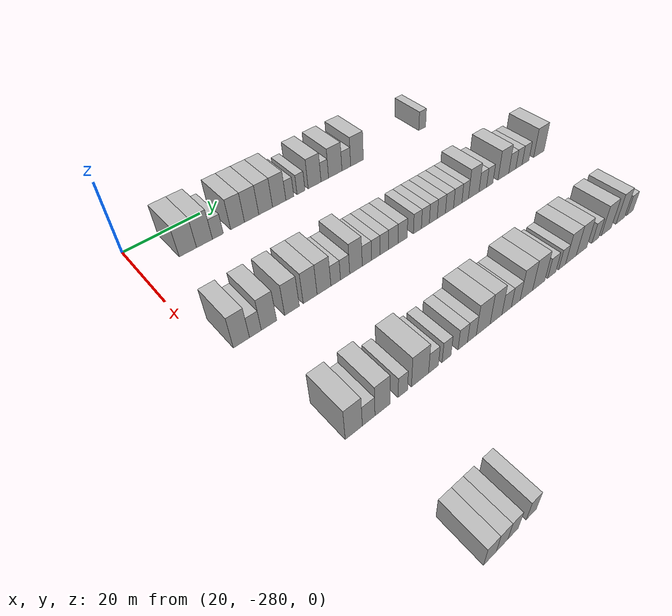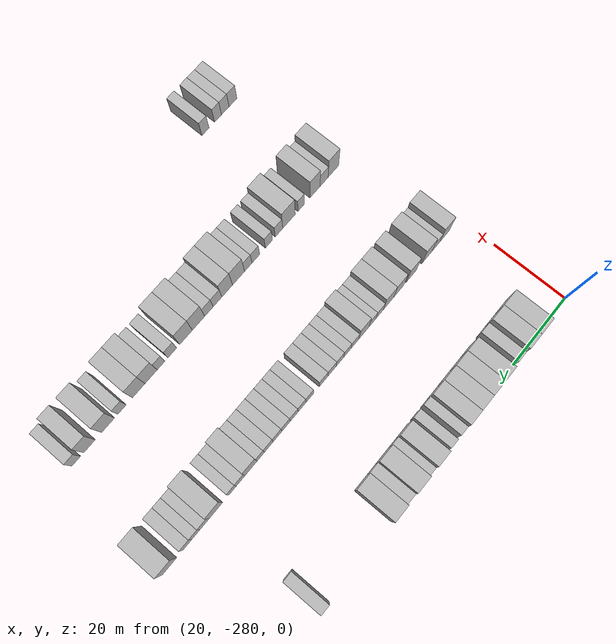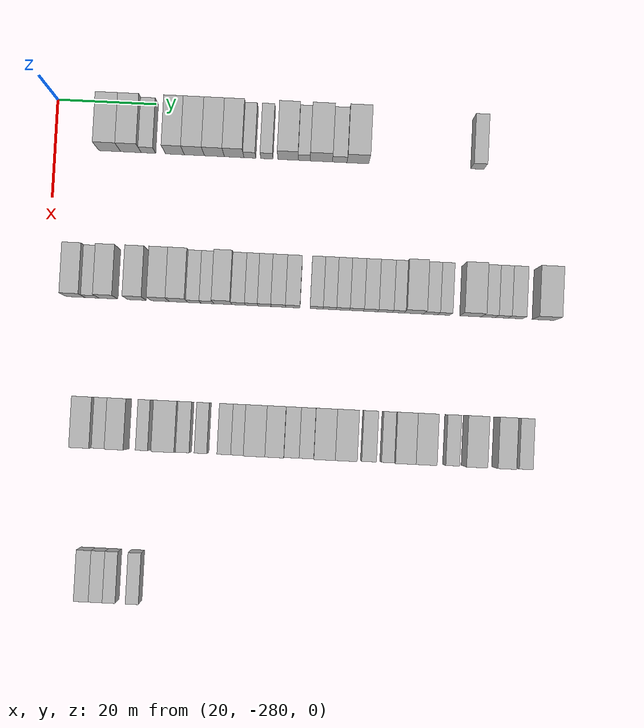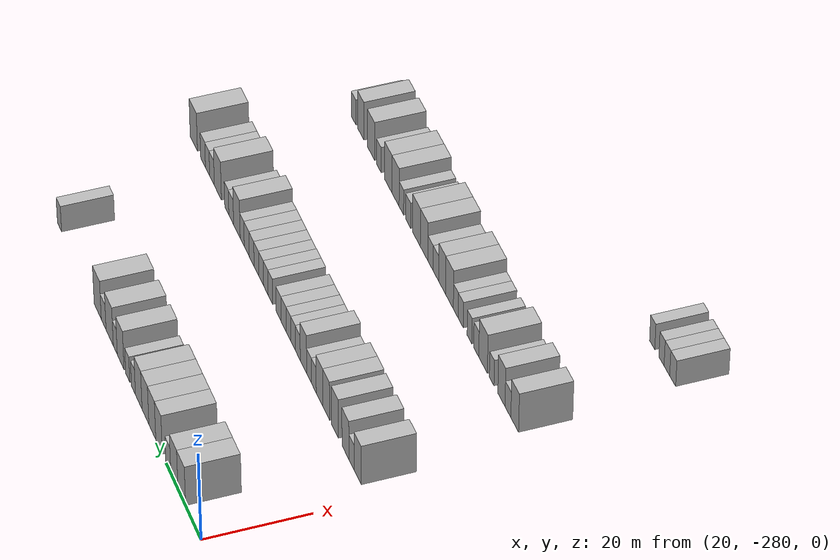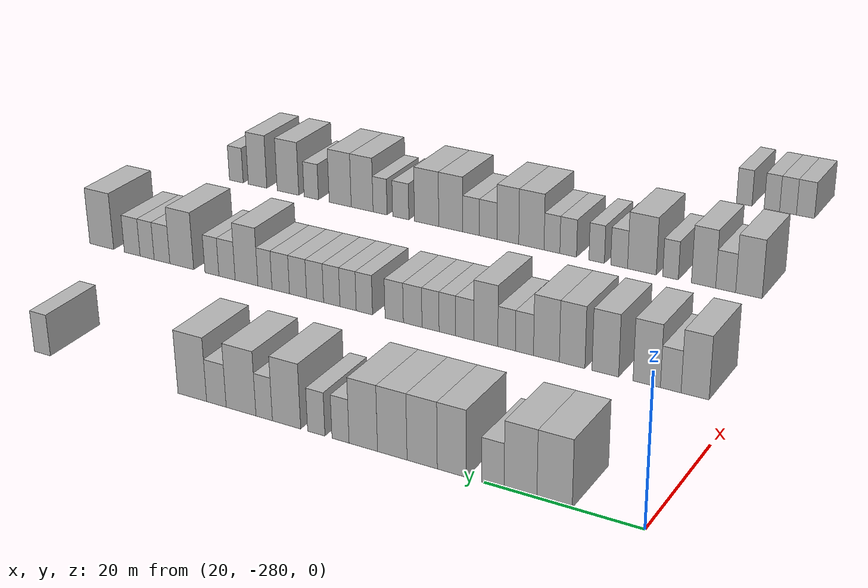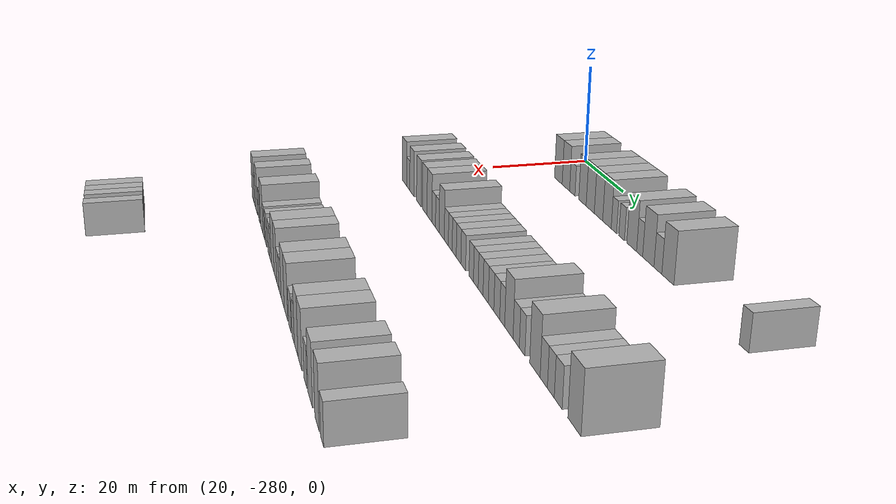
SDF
<sdf version="1.6">
 <world name="default">
  <model name="building_50">
   <static>1</static>
   <pose>25.0000 -268.9126 0 0.000000 0.000000 0.000000</pose>
   <link name="link">
    <pose>0 0 4.50 0 0 0</pose>
    <collision name="collision"><geometry><box><size>10.0000 4.4257 9.0000</size></box></geometry></collision>
    <visual name="visual">
     <cast_shadows>0</cast_shadows>
     <geometry><box><size>10.0000 4.4257 9.0000</size></box></geometry>
     <material>
      <script>
       <uri>model://HANNAS_wall/materials/scripts</uri>
       <uri>model://HANNAS_wall/materials/textures</uri>
       <name>vrc/HANNAS_wall</name>
      </script>
     </material>
    </visual>
   </link>
  </model>
  <model name="building_51">
   <static>1</static>
   <pose>25.0000 -264.6136 0 0.000000 0.000000 0.000000</pose>
   <link name="link">
    <pose>0 0 4.50 0 0 0</pose>
    <collision name="collision"><geometry><box><size>10.0000 4.1723 9.0000</size></box></geometry></collision>
    <visual name="visual">
     <cast_shadows>0</cast_shadows>
     <geometry><box><size>10.0000 4.1723 9.0000</size></box></geometry>
     <material>
      <script>
       <uri>model://HANNAS_wall/materials/scripts</uri>
       <uri>model://HANNAS_wall/materials/textures</uri>
       <name>vrc/HANNAS_wall</name>
      </script>
     </material>
    </visual>
   </link>
  </model>
  <model name="building_52">
   <static>1</static>
   <pose>25.0000 -261.0676 0 0.000000 0.000000 0.000000</pose>
   <link name="link">
    <pose>0 0 3.00 0 0 0</pose>
    <collision name="collision"><geometry><box><size>10.0000 2.9197 6.0000</size></box></geometry></collision>
    <visual name="visual">
     <cast_shadows>0</cast_shadows>
     <geometry><box><size>10.0000 2.9197 6.0000</size></box></geometry>
     <material>
      <script>
       <uri>model://HANNAS_wall/materials/scripts</uri>
       <uri>model://HANNAS_wall/materials/textures</uri>
       <name>vrc/HANNAS_wall</name>
      </script>
     </material>
    </visual>
   </link>
  </model>
  <model name="building_53">
   <static>1</static>
   <pose>25.0000 -255.6854 0 0.000000 0.000000 0.000000</pose>
   <link name="link">
    <pose>0 0 4.50 0 0 0</pose>
    <collision name="collision"><geometry><box><size>10.0000 3.8448 9.0000</size></box></geometry></collision>
    <visual name="visual">
     <cast_shadows>0</cast_shadows>
     <geometry><box><size>10.0000 3.8448 9.0000</size></box></geometry>
     <material>
      <script>
       <uri>model://HANNAS_wall/materials/scripts</uri>
       <uri>model://HANNAS_wall/materials/textures</uri>
       <name>vrc/HANNAS_wall</name>
      </script>
     </material>
    </visual>
   </link>
  </model>
  <model name="building_54">
   <static>1</static>
   <pose>25.0000 -251.7251 0 0.000000 0.000000 0.000000</pose>
   <link name="link">
    <pose>0 0 4.50 0 0 0</pose>
    <collision name="collision"><geometry><box><size>10.0000 4.0758 9.0000</size></box></geometry></collision>
    <visual name="visual">
     <cast_shadows>0</cast_shadows>
     <geometry><box><size>10.0000 4.0758 9.0000</size></box></geometry>
     <material>
      <script>
       <uri>model://HANNAS_wall/materials/scripts</uri>
       <uri>model://HANNAS_wall/materials/textures</uri>
       <name>vrc/HANNAS_wall</name>
      </script>
     </material>
    </visual>
   </link>
  </model>
  <model name="building_55">
   <static>1</static>
   <pose>25.0000 -247.6626 0 0.000000 0.000000 0.000000</pose>
   <link name="link">
    <pose>0 0 4.50 0 0 0</pose>
    <collision name="collision"><geometry><box><size>10.0000 4.0492 9.0000</size></box></geometry></collision>
    <visual name="visual">
     <cast_shadows>0</cast_shadows>
     <geometry><box><size>10.0000 4.0492 9.0000</size></box></geometry>
     <material>
      <script>
       <uri>model://HANNAS_wall/materials/scripts</uri>
       <uri>model://HANNAS_wall/materials/textures</uri>
       <name>vrc/HANNAS_wall</name>
      </script>
     </material>
    </visual>
   </link>
  </model>
  <model name="building_56">
   <static>1</static>
   <pose>25.0000 -243.6527 0 0.000000 0.000000 0.000000</pose>
   <link name="link">
    <pose>0 0 4.50 0 0 0</pose>
    <collision name="collision"><geometry><box><size>10.0000 3.9707 9.0000</size></box></geometry></collision>
    <visual name="visual">
     <cast_shadows>0</cast_shadows>
     <geometry><box><size>10.0000 3.9707 9.0000</size></box></geometry>
     <material>
      <script>
       <uri>model://HANNAS_wall/materials/scripts</uri>
       <uri>model://HANNAS_wall/materials/textures</uri>
       <name>vrc/HANNAS_wall</name>
      </script>
     </material>
    </visual>
   </link>
  </model>
  <model name="building_57">
   <static>1</static>
   <pose>25.0000 -240.4575 0 0.000000 0.000000 0.000000</pose>
   <link name="link">
    <pose>0 0 3.00 0 0 0</pose>
    <collision name="collision"><geometry><box><size>10.0000 2.4198 6.0000</size></box></geometry></collision>
    <visual name="visual">
     <cast_shadows>0</cast_shadows>
     <geometry><box><size>10.0000 2.4198 6.0000</size></box></geometry>
     <material>
      <script>
       <uri>model://HANNAS_wall/materials/scripts</uri>
       <uri>model://HANNAS_wall/materials/textures</uri>
       <name>vrc/HANNAS_wall</name>
      </script>
     </material>
    </visual>
   </link>
  </model>
  <model name="building_58">
   <static>1</static>
   <pose>25.0000 -237.0049 0 0.000000 0.000000 0.000000</pose>
   <link name="link">
    <pose>0 0 3.00 0 0 0</pose>
    <collision name="collision"><geometry><box><size>10.0000 2.4852 6.0000</size></box></geometry></collision>
    <visual name="visual">
     <cast_shadows>0</cast_shadows>
     <geometry><box><size>10.0000 2.4852 6.0000</size></box></geometry>
     <material>
      <script>
       <uri>model://HANNAS_wall/materials/scripts</uri>
       <uri>model://HANNAS_wall/materials/textures</uri>
       <name>vrc/HANNAS_wall</name>
      </script>
     </material>
    </visual>
   </link>
  </model>
  <model name="building_59">
   <static>1</static>
   <pose>25.0000 -232.6993 0 0.000000 0.000000 0.000000</pose>
   <link name="link">
    <pose>0 0 4.50 0 0 0</pose>
    <collision name="collision"><geometry><box><size>10.0000 4.1260 9.0000</size></box></geometry></collision>
    <visual name="visual">
     <cast_shadows>0</cast_shadows>
     <geometry><box><size>10.0000 4.1260 9.0000</size></box></geometry>
     <material>
      <script>
       <uri>model://HANNAS_wall/materials/scripts</uri>
       <uri>model://HANNAS_wall/materials/textures</uri>
       <name>vrc/HANNAS_wall</name>
      </script>
     </material>
    </visual>
   </link>
  </model>
  <model name="building_60">
   <static>1</static>
   <pose>25.0000 -229.4188 0 0.000000 0.000000 0.000000</pose>
   <link name="link">
    <pose>0 0 3.00 0 0 0</pose>
    <collision name="collision"><geometry><box><size>10.0000 2.4350 6.0000</size></box></geometry></collision>
    <visual name="visual">
     <cast_shadows>0</cast_shadows>
     <geometry><box><size>10.0000 2.4350 6.0000</size></box></geometry>
     <material>
      <script>
       <uri>model://HANNAS_wall/materials/scripts</uri>
       <uri>model://HANNAS_wall/materials/textures</uri>
       <name>vrc/HANNAS_wall</name>
      </script>
     </material>
    </visual>
   </link>
  </model>
  <model name="building_61">
   <static>1</static>
   <pose>25.0000 -225.9693 0 0.000000 0.000000 0.000000</pose>
   <link name="link">
    <pose>0 0 4.50 0 0 0</pose>
    <collision name="collision"><geometry><box><size>10.0000 4.4639 9.0000</size></box></geometry></collision>
    <visual name="visual">
     <cast_shadows>0</cast_shadows>
     <geometry><box><size>10.0000 4.4639 9.0000</size></box></geometry>
     <material>
      <script>
       <uri>model://HANNAS_wall/materials/scripts</uri>
       <uri>model://HANNAS_wall/materials/textures</uri>
       <name>vrc/HANNAS_wall</name>
      </script>
     </material>
    </visual>
   </link>
  </model>
  <model name="building_62">
   <static>1</static>
   <pose>25.0000 -222.2496 0 0.000000 0.000000 0.000000</pose>
   <link name="link">
    <pose>0 0 3.00 0 0 0</pose>
    <collision name="collision"><geometry><box><size>10.0000 2.9757 6.0000</size></box></geometry></collision>
    <visual name="visual">
     <cast_shadows>0</cast_shadows>
     <geometry><box><size>10.0000 2.9757 6.0000</size></box></geometry>
     <material>
      <script>
       <uri>model://HANNAS_wall/materials/scripts</uri>
       <uri>model://HANNAS_wall/materials/textures</uri>
       <name>vrc/HANNAS_wall</name>
      </script>
     </material>
    </visual>
   </link>
  </model>
  <model name="building_63">
   <static>1</static>
   <pose>25.0000 -218.5506 0 0.000000 0.000000 0.000000</pose>
   <link name="link">
    <pose>0 0 4.50 0 0 0</pose>
    <collision name="collision"><geometry><box><size>10.0000 4.4222 9.0000</size></box></geometry></collision>
    <visual name="visual">
     <cast_shadows>0</cast_shadows>
     <geometry><box><size>10.0000 4.4222 9.0000</size></box></geometry>
     <material>
      <script>
       <uri>model://HANNAS_wall/materials/scripts</uri>
       <uri>model://HANNAS_wall/materials/textures</uri>
       <name>vrc/HANNAS_wall</name>
      </script>
     </material>
    </visual>
   </link>
  </model>
  <model name="building_64">
   <static>1</static>
   <pose>25.0000 -194.2822 0 0.000000 0.000000 0.000000</pose>
   <link name="link">
    <pose>0 0 3.00 0 0 0</pose>
    <collision name="collision"><geometry><box><size>10.0000 2.7049 6.0000</size></box></geometry></collision>
    <visual name="visual">
     <cast_shadows>0</cast_shadows>
     <geometry><box><size>10.0000 2.7049 6.0000</size></box></geometry>
     <material>
      <script>
       <uri>model://HANNAS_wall/materials/scripts</uri>
       <uri>model://HANNAS_wall/materials/textures</uri>
       <name>vrc/HANNAS_wall</name>
      </script>
     </material>
    </visual>
   </link>
  </model>
  <model name="building_264">
   <static>1</static>
   <pose>55.0000 -274.0700 0 0.000000 0.000000 0.000000</pose>
   <link name="link">
    <pose>0 0 4.50 0 0 0</pose>
    <collision name="collision"><geometry><box><size>10.0000 3.7678 9.0000</size></box></geometry></collision>
    <visual name="visual">
     <cast_shadows>0</cast_shadows>
     <geometry><box><size>10.0000 3.7678 9.0000</size></box></geometry>
     <material>
      <script>
       <uri>model://HANNAS_wall/materials/scripts</uri>
       <uri>model://HANNAS_wall/materials/textures</uri>
       <name>vrc/HANNAS_wall</name>
      </script>
     </material>
    </visual>
   </link>
  </model>
  <model name="building_265">
   <static>1</static>
   <pose>55.0000 -270.7820 0 0.000000 0.000000 0.000000</pose>
   <link name="link">
    <pose>0 0 3.00 0 0 0</pose>
    <collision name="collision"><geometry><box><size>10.0000 2.8082 6.0000</size></box></geometry></collision>
    <visual name="visual">
     <cast_shadows>0</cast_shadows>
     <geometry><box><size>10.0000 2.8082 6.0000</size></box></geometry>
     <material>
      <script>
       <uri>model://HANNAS_wall/materials/scripts</uri>
       <uri>model://HANNAS_wall/materials/textures</uri>
       <name>vrc/HANNAS_wall</name>
      </script>
     </material>
    </visual>
   </link>
  </model>
  <model name="building_266">
   <static>1</static>
   <pose>55.0000 -267.4968 0 0.000000 0.000000 0.000000</pose>
   <link name="link">
    <pose>0 0 4.50 0 0 0</pose>
    <collision name="collision"><geometry><box><size>10.0000 3.7623 9.0000</size></box></geometry></collision>
    <visual name="visual">
     <cast_shadows>0</cast_shadows>
     <geometry><box><size>10.0000 3.7623 9.0000</size></box></geometry>
     <material>
      <script>
       <uri>model://HANNAS_wall/materials/scripts</uri>
       <uri>model://HANNAS_wall/materials/textures</uri>
       <name>vrc/HANNAS_wall</name>
      </script>
     </material>
    </visual>
   </link>
  </model>
  <model name="building_267">
   <static>1</static>
   <pose>55.0000 -261.7389 0 0.000000 0.000000 0.000000</pose>
   <link name="link">
    <pose>0 0 4.50 0 0 0</pose>
    <collision name="collision"><geometry><box><size>10.0000 3.7535 9.0000</size></box></geometry></collision>
    <visual name="visual">
     <cast_shadows>0</cast_shadows>
     <geometry><box><size>10.0000 3.7535 9.0000</size></box></geometry>
     <material>
      <script>
       <uri>model://HANNAS_wall/materials/scripts</uri>
       <uri>model://HANNAS_wall/materials/textures</uri>
       <name>vrc/HANNAS_wall</name>
      </script>
     </material>
    </visual>
   </link>
  </model>
  <model name="building_268">
   <static>1</static>
   <pose>55.0000 -257.0282 0 0.000000 0.000000 0.000000</pose>
   <link name="link">
    <pose>0 0 4.50 0 0 0</pose>
    <collision name="collision"><geometry><box><size>10.0000 3.6679 9.0000</size></box></geometry></collision>
    <visual name="visual">
     <cast_shadows>0</cast_shadows>
     <geometry><box><size>10.0000 3.6679 9.0000</size></box></geometry>
     <material>
      <script>
       <uri>model://HANNAS_wall/materials/scripts</uri>
       <uri>model://HANNAS_wall/materials/textures</uri>
       <name>vrc/HANNAS_wall</name>
      </script>
     </material>
    </visual>
   </link>
  </model>
  <model name="building_269">
   <static>1</static>
   <pose>55.0000 -253.3184 0 0.000000 0.000000 0.000000</pose>
   <link name="link">
    <pose>0 0 4.50 0 0 0</pose>
    <collision name="collision"><geometry><box><size>10.0000 3.7517 9.0000</size></box></geometry></collision>
    <visual name="visual">
     <cast_shadows>0</cast_shadows>
     <geometry><box><size>10.0000 3.7517 9.0000</size></box></geometry>
     <material>
      <script>
       <uri>model://HANNAS_wall/materials/scripts</uri>
       <uri>model://HANNAS_wall/materials/textures</uri>
       <name>vrc/HANNAS_wall</name>
      </script>
     </material>
    </visual>
   </link>
  </model>
  <model name="building_270">
   <static>1</static>
   <pose>55.0000 -250.1114 0 0.000000 0.000000 0.000000</pose>
   <link name="link">
    <pose>0 0 3.00 0 0 0</pose>
    <collision name="collision"><geometry><box><size>10.0000 2.6622 6.0000</size></box></geometry></collision>
    <visual name="visual">
     <cast_shadows>0</cast_shadows>
     <geometry><box><size>10.0000 2.6622 6.0000</size></box></geometry>
     <material>
      <script>
       <uri>model://HANNAS_wall/materials/scripts</uri>
       <uri>model://HANNAS_wall/materials/textures</uri>
       <name>vrc/HANNAS_wall</name>
      </script>
     </material>
    </visual>
   </link>
  </model>
  <model name="building_271">
   <static>1</static>
   <pose>55.0000 -247.4795 0 0.000000 0.000000 0.000000</pose>
   <link name="link">
    <pose>0 0 3.00 0 0 0</pose>
    <collision name="collision"><geometry><box><size>10.0000 2.6016 6.0000</size></box></geometry></collision>
    <visual name="visual">
     <cast_shadows>0</cast_shadows>
     <geometry><box><size>10.0000 2.6016 6.0000</size></box></geometry>
     <material>
      <script>
       <uri>model://HANNAS_wall/materials/scripts</uri>
       <uri>model://HANNAS_wall/materials/textures</uri>
       <name>vrc/HANNAS_wall</name>
      </script>
     </material>
    </visual>
   </link>
  </model>
  <model name="building_272">
   <static>1</static>
   <pose>55.0000 -244.3650 0 0.000000 0.000000 0.000000</pose>
   <link name="link">
    <pose>0 0 4.50 0 0 0</pose>
    <collision name="collision"><geometry><box><size>10.0000 3.6274 9.0000</size></box></geometry></collision>
    <visual name="visual">
     <cast_shadows>0</cast_shadows>
     <geometry><box><size>10.0000 3.6274 9.0000</size></box></geometry>
     <material>
      <script>
       <uri>model://HANNAS_wall/materials/scripts</uri>
       <uri>model://HANNAS_wall/materials/textures</uri>
       <name>vrc/HANNAS_wall</name>
      </script>
     </material>
    </visual>
   </link>
  </model>
  <model name="building_273">
   <static>1</static>
   <pose>55.0000 -241.1746 0 0.000000 0.000000 0.000000</pose>
   <link name="link">
    <pose>0 0 3.00 0 0 0</pose>
    <collision name="collision"><geometry><box><size>10.0000 2.7535 6.0000</size></box></geometry></collision>
    <visual name="visual">
     <cast_shadows>0</cast_shadows>
     <geometry><box><size>10.0000 2.7535 6.0000</size></box></geometry>
     <material>
      <script>
       <uri>model://HANNAS_wall/materials/scripts</uri>
       <uri>model://HANNAS_wall/materials/textures</uri>
       <name>vrc/HANNAS_wall</name>
      </script>
     </material>
    </visual>
   </link>
  </model>
  <model name="building_274">
   <static>1</static>
   <pose>55.0000 -238.5327 0 0.000000 0.000000 0.000000</pose>
   <link name="link">
    <pose>0 0 3.00 0 0 0</pose>
    <collision name="collision"><geometry><box><size>10.0000 2.5304 6.0000</size></box></geometry></collision>
    <visual name="visual">
     <cast_shadows>0</cast_shadows>
     <geometry><box><size>10.0000 2.5304 6.0000</size></box></geometry>
     <material>
      <script>
       <uri>model://HANNAS_wall/materials/scripts</uri>
       <uri>model://HANNAS_wall/materials/textures</uri>
       <name>vrc/HANNAS_wall</name>
      </script>
     </material>
    </visual>
   </link>
  </model>
  <model name="building_275">
   <static>1</static>
   <pose>55.0000 -235.9418 0 0.000000 0.000000 0.000000</pose>
   <link name="link">
    <pose>0 0 3.00 0 0 0</pose>
    <collision name="collision"><geometry><box><size>10.0000 2.6516 6.0000</size></box></geometry></collision>
    <visual name="visual">
     <cast_shadows>0</cast_shadows>
     <geometry><box><size>10.0000 2.6516 6.0000</size></box></geometry>
     <material>
      <script>
       <uri>model://HANNAS_wall/materials/scripts</uri>
       <uri>model://HANNAS_wall/materials/textures</uri>
       <name>vrc/HANNAS_wall</name>
      </script>
     </material>
    </visual>
   </link>
  </model>
  <model name="building_276">
   <static>1</static>
   <pose>55.0000 -233.1583 0 0.000000 0.000000 0.000000</pose>
   <link name="link">
    <pose>0 0 3.00 0 0 0</pose>
    <collision name="collision"><geometry><box><size>10.0000 2.9152 6.0000</size></box></geometry></collision>
    <visual name="visual">
     <cast_shadows>0</cast_shadows>
     <geometry><box><size>10.0000 2.9152 6.0000</size></box></geometry>
     <material>
      <script>
       <uri>model://HANNAS_wall/materials/scripts</uri>
       <uri>model://HANNAS_wall/materials/textures</uri>
       <name>vrc/HANNAS_wall</name>
      </script>
     </material>
    </visual>
   </link>
  </model>
  <model name="building_277">
   <static>1</static>
   <pose>55.0000 -230.2488 0 0.000000 0.000000 0.000000</pose>
   <link name="link">
    <pose>0 0 3.00 0 0 0</pose>
    <collision name="collision"><geometry><box><size>10.0000 2.9038 6.0000</size></box></geometry></collision>
    <visual name="visual">
     <cast_shadows>0</cast_shadows>
     <geometry><box><size>10.0000 2.9038 6.0000</size></box></geometry>
     <material>
      <script>
       <uri>model://HANNAS_wall/materials/scripts</uri>
       <uri>model://HANNAS_wall/materials/textures</uri>
       <name>vrc/HANNAS_wall</name>
      </script>
     </material>
    </visual>
   </link>
  </model>
  <model name="building_278">
   <static>1</static>
   <pose>55.0000 -225.4875 0 0.000000 0.000000 0.000000</pose>
   <link name="link">
    <pose>0 0 3.00 0 0 0</pose>
    <collision name="collision"><geometry><box><size>10.0000 2.6188 6.0000</size></box></geometry></collision>
    <visual name="visual">
     <cast_shadows>0</cast_shadows>
     <geometry><box><size>10.0000 2.6188 6.0000</size></box></geometry>
     <material>
      <script>
       <uri>model://HANNAS_wall/materials/scripts</uri>
       <uri>model://HANNAS_wall/materials/textures</uri>
       <name>vrc/HANNAS_wall</name>
      </script>
     </material>
    </visual>
   </link>
  </model>
  <model name="building_279">
   <static>1</static>
   <pose>55.0000 -222.8541 0 0.000000 0.000000 0.000000</pose>
   <link name="link">
    <pose>0 0 3.00 0 0 0</pose>
    <collision name="collision"><geometry><box><size>10.0000 2.6481 6.0000</size></box></geometry></collision>
    <visual name="visual">
     <cast_shadows>0</cast_shadows>
     <geometry><box><size>10.0000 2.6481 6.0000</size></box></geometry>
     <material>
      <script>
       <uri>model://HANNAS_wall/materials/scripts</uri>
       <uri>model://HANNAS_wall/materials/textures</uri>
       <name>vrc/HANNAS_wall</name>
      </script>
     </material>
    </visual>
   </link>
  </model>
  <model name="building_280">
   <static>1</static>
   <pose>55.0000 -220.1890 0 0.000000 0.000000 0.000000</pose>
   <link name="link">
    <pose>0 0 3.00 0 0 0</pose>
    <collision name="collision"><geometry><box><size>10.0000 2.6820 6.0000</size></box></geometry></collision>
    <visual name="visual">
     <cast_shadows>0</cast_shadows>
     <geometry><box><size>10.0000 2.6820 6.0000</size></box></geometry>
     <material>
      <script>
       <uri>model://HANNAS_wall/materials/scripts</uri>
       <uri>model://HANNAS_wall/materials/textures</uri>
       <name>vrc/HANNAS_wall</name>
      </script>
     </material>
    </visual>
   </link>
  </model>
  <model name="building_281">
   <static>1</static>
   <pose>55.0000 -217.4396 0 0.000000 0.000000 0.000000</pose>
   <link name="link">
    <pose>0 0 3.00 0 0 0</pose>
    <collision name="collision"><geometry><box><size>10.0000 2.8168 6.0000</size></box></geometry></collision>
    <visual name="visual">
     <cast_shadows>0</cast_shadows>
     <geometry><box><size>10.0000 2.8168 6.0000</size></box></geometry>
     <material>
      <script>
       <uri>model://HANNAS_wall/materials/scripts</uri>
       <uri>model://HANNAS_wall/materials/textures</uri>
       <name>vrc/HANNAS_wall</name>
      </script>
     </material>
    </visual>
   </link>
  </model>
  <model name="building_282">
   <static>1</static>
   <pose>55.0000 -214.5979 0 0.000000 0.000000 0.000000</pose>
   <link name="link">
    <pose>0 0 3.00 0 0 0</pose>
    <collision name="collision"><geometry><box><size>10.0000 2.8666 6.0000</size></box></geometry></collision>
    <visual name="visual">
     <cast_shadows>0</cast_shadows>
     <geometry><box><size>10.0000 2.8666 6.0000</size></box></geometry>
     <material>
      <script>
       <uri>model://HANNAS_wall/materials/scripts</uri>
       <uri>model://HANNAS_wall/materials/textures</uri>
       <name>vrc/HANNAS_wall</name>
      </script>
     </material>
    </visual>
   </link>
  </model>
  <model name="building_283">
   <static>1</static>
   <pose>55.0000 -211.6831 0 0.000000 0.000000 0.000000</pose>
   <link name="link">
    <pose>0 0 3.00 0 0 0</pose>
    <collision name="collision"><geometry><box><size>10.0000 2.9630 6.0000</size></box></geometry></collision>
    <visual name="visual">
     <cast_shadows>0</cast_shadows>
     <geometry><box><size>10.0000 2.9630 6.0000</size></box></geometry>
     <material>
      <script>
       <uri>model://HANNAS_wall/materials/scripts</uri>
       <uri>model://HANNAS_wall/materials/textures</uri>
       <name>vrc/HANNAS_wall</name>
      </script>
     </material>
    </visual>
   </link>
  </model>
  <model name="building_284">
   <static>1</static>
   <pose>55.0000 -208.9983 0 0.000000 0.000000 0.000000</pose>
   <link name="link">
    <pose>0 0 3.00 0 0 0</pose>
    <collision name="collision"><geometry><box><size>10.0000 2.4067 6.0000</size></box></geometry></collision>
    <visual name="visual">
     <cast_shadows>0</cast_shadows>
     <geometry><box><size>10.0000 2.4067 6.0000</size></box></geometry>
     <material>
      <script>
       <uri>model://HANNAS_wall/materials/scripts</uri>
       <uri>model://HANNAS_wall/materials/textures</uri>
       <name>vrc/HANNAS_wall</name>
      </script>
     </material>
    </visual>
   </link>
  </model>
  <model name="building_285">
   <static>1</static>
   <pose>55.0000 -205.8319 0 0.000000 0.000000 0.000000</pose>
   <link name="link">
    <pose>0 0 4.50 0 0 0</pose>
    <collision name="collision"><geometry><box><size>10.0000 3.9261 9.0000</size></box></geometry></collision>
    <visual name="visual">
     <cast_shadows>0</cast_shadows>
     <geometry><box><size>10.0000 3.9261 9.0000</size></box></geometry>
     <material>
      <script>
       <uri>model://HANNAS_wall/materials/scripts</uri>
       <uri>model://HANNAS_wall/materials/textures</uri>
       <name>vrc/HANNAS_wall</name>
      </script>
     </material>
    </visual>
   </link>
  </model>
  <model name="building_286">
   <static>1</static>
   <pose>55.0000 -202.4458 0 0.000000 0.000000 0.000000</pose>
   <link name="link">
    <pose>0 0 3.00 0 0 0</pose>
    <collision name="collision"><geometry><box><size>10.0000 2.8460 6.0000</size></box></geometry></collision>
    <visual name="visual">
     <cast_shadows>0</cast_shadows>
     <geometry><box><size>10.0000 2.8460 6.0000</size></box></geometry>
     <material>
      <script>
       <uri>model://HANNAS_wall/materials/scripts</uri>
       <uri>model://HANNAS_wall/materials/textures</uri>
       <name>vrc/HANNAS_wall</name>
      </script>
     </material>
    </visual>
   </link>
  </model>
  <model name="building_287">
   <static>1</static>
   <pose>55.0000 -199.7913 0 0.000000 0.000000 0.000000</pose>
   <link name="link">
    <pose>0 0 3.00 0 0 0</pose>
    <collision name="collision"><geometry><box><size>10.0000 2.4629 6.0000</size></box></geometry></collision>
    <visual name="visual">
     <cast_shadows>0</cast_shadows>
     <geometry><box><size>10.0000 2.4629 6.0000</size></box></geometry>
     <material>
      <script>
       <uri>model://HANNAS_wall/materials/scripts</uri>
       <uri>model://HANNAS_wall/materials/textures</uri>
       <name>vrc/HANNAS_wall</name>
      </script>
     </material>
    </visual>
   </link>
  </model>
  <model name="building_288">
   <static>1</static>
   <pose>55.0000 -194.4192 0 0.000000 0.000000 0.000000</pose>
   <link name="link">
    <pose>0 0 4.50 0 0 0</pose>
    <collision name="collision"><geometry><box><size>10.0000 4.2814 9.0000</size></box></geometry></collision>
    <visual name="visual">
     <cast_shadows>0</cast_shadows>
     <geometry><box><size>10.0000 4.2814 9.0000</size></box></geometry>
     <material>
      <script>
       <uri>model://HANNAS_wall/materials/scripts</uri>
       <uri>model://HANNAS_wall/materials/textures</uri>
       <name>vrc/HANNAS_wall</name>
      </script>
     </material>
    </visual>
   </link>
  </model>
  <model name="building_289">
   <static>1</static>
   <pose>55.0000 -190.8534 0 0.000000 0.000000 0.000000</pose>
   <link name="link">
    <pose>0 0 3.00 0 0 0</pose>
    <collision name="collision"><geometry><box><size>10.0000 2.8503 6.0000</size></box></geometry></collision>
    <visual name="visual">
     <cast_shadows>0</cast_shadows>
     <geometry><box><size>10.0000 2.8503 6.0000</size></box></geometry>
     <material>
      <script>
       <uri>model://HANNAS_wall/materials/scripts</uri>
       <uri>model://HANNAS_wall/materials/textures</uri>
       <name>vrc/HANNAS_wall</name>
      </script>
     </material>
    </visual>
   </link>
  </model>
  <model name="building_290">
   <static>1</static>
   <pose>55.0000 -188.1364 0 0.000000 0.000000 0.000000</pose>
   <link name="link">
    <pose>0 0 3.00 0 0 0</pose>
    <collision name="collision"><geometry><box><size>10.0000 2.5836 6.0000</size></box></geometry></collision>
    <visual name="visual">
     <cast_shadows>0</cast_shadows>
     <geometry><box><size>10.0000 2.5836 6.0000</size></box></geometry>
     <material>
      <script>
       <uri>model://HANNAS_wall/materials/scripts</uri>
       <uri>model://HANNAS_wall/materials/textures</uri>
       <name>vrc/HANNAS_wall</name>
      </script>
     </material>
    </visual>
   </link>
  </model>
  <model name="building_291">
   <static>1</static>
   <pose>55.0000 -185.3908 0 0.000000 0.000000 0.000000</pose>
   <link name="link">
    <pose>0 0 3.00 0 0 0</pose>
    <collision name="collision"><geometry><box><size>10.0000 2.9077 6.0000</size></box></geometry></collision>
    <visual name="visual">
     <cast_shadows>0</cast_shadows>
     <geometry><box><size>10.0000 2.9077 6.0000</size></box></geometry>
     <material>
      <script>
       <uri>model://HANNAS_wall/materials/scripts</uri>
       <uri>model://HANNAS_wall/materials/textures</uri>
       <name>vrc/HANNAS_wall</name>
      </script>
     </material>
    </visual>
   </link>
  </model>
  <model name="building_292">
   <static>1</static>
   <pose>55.0000 -179.6924 0 0.000000 0.000000 0.000000</pose>
   <link name="link">
    <pose>0 0 4.50 0 0 0</pose>
    <collision name="collision"><geometry><box><size>10.0000 4.4892 9.0000</size></box></geometry></collision>
    <visual name="visual">
     <cast_shadows>0</cast_shadows>
     <geometry><box><size>10.0000 4.4892 9.0000</size></box></geometry>
     <material>
      <script>
       <uri>model://HANNAS_wall/materials/scripts</uri>
       <uri>model://HANNAS_wall/materials/textures</uri>
       <name>vrc/HANNAS_wall</name>
      </script>
     </material>
    </visual>
   </link>
  </model>
  <model name="building_502">
   <static>1</static>
   <pose>85.0000 -270.3484 0 0.000000 0.000000 0.000000</pose>
   <link name="link">
    <pose>0 0 4.50 0 0 0</pose>
    <collision name="collision"><geometry><box><size>10.0000 3.9264 9.0000</size></box></geometry></collision>
    <visual name="visual">
     <cast_shadows>0</cast_shadows>
     <geometry><box><size>10.0000 3.9264 9.0000</size></box></geometry>
     <material>
      <script>
       <uri>model://HANNAS_wall/materials/scripts</uri>
       <uri>model://HANNAS_wall/materials/textures</uri>
       <name>vrc/HANNAS_wall</name>
      </script>
     </material>
    </visual>
   </link>
  </model>
  <model name="building_503">
   <static>1</static>
   <pose>85.0000 -266.8934 0 0.000000 0.000000 0.000000</pose>
   <link name="link">
    <pose>0 0 3.00 0 0 0</pose>
    <collision name="collision"><geometry><box><size>10.0000 2.9835 6.0000</size></box></geometry></collision>
    <visual name="visual">
     <cast_shadows>0</cast_shadows>
     <geometry><box><size>10.0000 2.9835 6.0000</size></box></geometry>
     <material>
      <script>
       <uri>model://HANNAS_wall/materials/scripts</uri>
       <uri>model://HANNAS_wall/materials/textures</uri>
       <name>vrc/HANNAS_wall</name>
      </script>
     </material>
    </visual>
   </link>
  </model>
  <model name="building_504">
   <static>1</static>
   <pose>85.0000 -263.5640 0 0.000000 0.000000 0.000000</pose>
   <link name="link">
    <pose>0 0 4.50 0 0 0</pose>
    <collision name="collision"><geometry><box><size>10.0000 3.6753 9.0000</size></box></geometry></collision>
    <visual name="visual">
     <cast_shadows>0</cast_shadows>
     <geometry><box><size>10.0000 3.6753 9.0000</size></box></geometry>
     <material>
      <script>
       <uri>model://HANNAS_wall/materials/scripts</uri>
       <uri>model://HANNAS_wall/materials/textures</uri>
       <name>vrc/HANNAS_wall</name>
      </script>
     </material>
    </visual>
   </link>
  </model>
  <model name="building_505">
   <static>1</static>
   <pose>85.0000 -258.5262 0 0.000000 0.000000 0.000000</pose>
   <link name="link">
    <pose>0 0 3.00 0 0 0</pose>
    <collision name="collision"><geometry><box><size>10.0000 2.4002 6.0000</size></box></geometry></collision>
    <visual name="visual">
     <cast_shadows>0</cast_shadows>
     <geometry><box><size>10.0000 2.4002 6.0000</size></box></geometry>
     <material>
      <script>
       <uri>model://HANNAS_wall/materials/scripts</uri>
       <uri>model://HANNAS_wall/materials/textures</uri>
       <name>vrc/HANNAS_wall</name>
      </script>
     </material>
    </visual>
   </link>
  </model>
  <model name="building_506">
   <static>1</static>
   <pose>85.0000 -254.0789 0 0.000000 0.000000 0.000000</pose>
   <link name="link">
    <pose>0 0 4.50 0 0 0</pose>
    <collision name="collision"><geometry><box><size>10.0000 4.4945 9.0000</size></box></geometry></collision>
    <visual name="visual">
     <cast_shadows>0</cast_shadows>
     <geometry><box><size>10.0000 4.4945 9.0000</size></box></geometry>
     <material>
      <script>
       <uri>model://HANNAS_wall/materials/scripts</uri>
       <uri>model://HANNAS_wall/materials/textures</uri>
       <name>vrc/HANNAS_wall</name>
      </script>
     </material>
    </visual>
   </link>
  </model>
  <model name="building_507">
   <static>1</static>
   <pose>85.0000 -250.4963 0 0.000000 0.000000 0.000000</pose>
   <link name="link">
    <pose>0 0 3.00 0 0 0</pose>
    <collision name="collision"><geometry><box><size>10.0000 2.6707 6.0000</size></box></geometry></collision>
    <visual name="visual">
     <cast_shadows>0</cast_shadows>
     <geometry><box><size>10.0000 2.6707 6.0000</size></box></geometry>
     <material>
      <script>
       <uri>model://HANNAS_wall/materials/scripts</uri>
       <uri>model://HANNAS_wall/materials/textures</uri>
       <name>vrc/HANNAS_wall</name>
      </script>
     </material>
    </visual>
   </link>
  </model>
  <model name="building_508">
   <static>1</static>
   <pose>85.0000 -246.9183 0 0.000000 0.000000 0.000000</pose>
   <link name="link">
    <pose>0 0 3.00 0 0 0</pose>
    <collision name="collision"><geometry><box><size>10.0000 2.4853 6.0000</size></box></geometry></collision>
    <visual name="visual">
     <cast_shadows>0</cast_shadows>
     <geometry><box><size>10.0000 2.4853 6.0000</size></box></geometry>
     <material>
      <script>
       <uri>model://HANNAS_wall/materials/scripts</uri>
       <uri>model://HANNAS_wall/materials/textures</uri>
       <name>vrc/HANNAS_wall</name>
      </script>
     </material>
    </visual>
   </link>
  </model>
  <model name="building_509">
   <static>1</static>
   <pose>85.0000 -242.3209 0 0.000000 0.000000 0.000000</pose>
   <link name="link">
    <pose>0 0 3.00 0 0 0</pose>
    <collision name="collision"><geometry><box><size>10.0000 2.7094 6.0000</size></box></geometry></collision>
    <visual name="visual">
     <cast_shadows>0</cast_shadows>
     <geometry><box><size>10.0000 2.7094 6.0000</size></box></geometry>
     <material>
      <script>
       <uri>model://HANNAS_wall/materials/scripts</uri>
       <uri>model://HANNAS_wall/materials/textures</uri>
       <name>vrc/HANNAS_wall</name>
      </script>
     </material>
    </visual>
   </link>
  </model>
  <model name="building_510">
   <static>1</static>
   <pose>85.0000 -239.6650 0 0.000000 0.000000 0.000000</pose>
   <link name="link">
    <pose>0 0 3.00 0 0 0</pose>
    <collision name="collision"><geometry><box><size>10.0000 2.6024 6.0000</size></box></geometry></collision>
    <visual name="visual">
     <cast_shadows>0</cast_shadows>
     <geometry><box><size>10.0000 2.6024 6.0000</size></box></geometry>
     <material>
      <script>
       <uri>model://HANNAS_wall/materials/scripts</uri>
       <uri>model://HANNAS_wall/materials/textures</uri>
       <name>vrc/HANNAS_wall</name>
      </script>
     </material>
    </visual>
   </link>
  </model>
  <model name="building_511">
   <static>1</static>
   <pose>85.0000 -236.2658 0 0.000000 0.000000 0.000000</pose>
   <link name="link">
    <pose>0 0 4.50 0 0 0</pose>
    <collision name="collision"><geometry><box><size>10.0000 4.1960 9.0000</size></box></geometry></collision>
    <visual name="visual">
     <cast_shadows>0</cast_shadows>
     <geometry><box><size>10.0000 4.1960 9.0000</size></box></geometry>
     <material>
      <script>
       <uri>model://HANNAS_wall/materials/scripts</uri>
       <uri>model://HANNAS_wall/materials/textures</uri>
       <name>vrc/HANNAS_wall</name>
      </script>
     </material>
    </visual>
   </link>
  </model>
  <model name="building_512">
   <static>1</static>
   <pose>85.0000 -232.3328 0 0.000000 0.000000 0.000000</pose>
   <link name="link">
    <pose>0 0 4.50 0 0 0</pose>
    <collision name="collision"><geometry><box><size>10.0000 3.6701 9.0000</size></box></geometry></collision>
    <visual name="visual">
     <cast_shadows>0</cast_shadows>
     <geometry><box><size>10.0000 3.6701 9.0000</size></box></geometry>
     <material>
      <script>
       <uri>model://HANNAS_wall/materials/scripts</uri>
       <uri>model://HANNAS_wall/materials/textures</uri>
       <name>vrc/HANNAS_wall</name>
      </script>
     </material>
    </visual>
   </link>
  </model>
  <model name="building_513">
   <static>1</static>
   <pose>85.0000 -229.0031 0 0.000000 0.000000 0.000000</pose>
   <link name="link">
    <pose>0 0 3.00 0 0 0</pose>
    <collision name="collision"><geometry><box><size>10.0000 2.9893 6.0000</size></box></geometry></collision>
    <visual name="visual">
     <cast_shadows>0</cast_shadows>
     <geometry><box><size>10.0000 2.9893 6.0000</size></box></geometry>
     <material>
      <script>
       <uri>model://HANNAS_wall/materials/scripts</uri>
       <uri>model://HANNAS_wall/materials/textures</uri>
       <name>vrc/HANNAS_wall</name>
      </script>
     </material>
    </visual>
   </link>
  </model>
  <model name="building_514">
   <static>1</static>
   <pose>85.0000 -226.0702 0 0.000000 0.000000 0.000000</pose>
   <link name="link">
    <pose>0 0 3.00 0 0 0</pose>
    <collision name="collision"><geometry><box><size>10.0000 2.8765 6.0000</size></box></geometry></collision>
    <visual name="visual">
     <cast_shadows>0</cast_shadows>
     <geometry><box><size>10.0000 2.8765 6.0000</size></box></geometry>
     <material>
      <script>
       <uri>model://HANNAS_wall/materials/scripts</uri>
       <uri>model://HANNAS_wall/materials/textures</uri>
       <name>vrc/HANNAS_wall</name>
      </script>
     </material>
    </visual>
   </link>
  </model>
  <model name="building_515">
   <static>1</static>
   <pose>85.0000 -222.5490 0 0.000000 0.000000 0.000000</pose>
   <link name="link">
    <pose>0 0 4.50 0 0 0</pose>
    <collision name="collision"><geometry><box><size>10.0000 4.1660 9.0000</size></box></geometry></collision>
    <visual name="visual">
     <cast_shadows>0</cast_shadows>
     <geometry><box><size>10.0000 4.1660 9.0000</size></box></geometry>
     <material>
      <script>
       <uri>model://HANNAS_wall/materials/scripts</uri>
       <uri>model://HANNAS_wall/materials/textures</uri>
       <name>vrc/HANNAS_wall</name>
      </script>
     </material>
    </visual>
   </link>
  </model>
  <model name="building_516">
   <static>1</static>
   <pose>85.0000 -218.3307 0 0.000000 0.000000 0.000000</pose>
   <link name="link">
    <pose>0 0 4.50 0 0 0</pose>
    <collision name="collision"><geometry><box><size>10.0000 4.2704 9.0000</size></box></geometry></collision>
    <visual name="visual">
     <cast_shadows>0</cast_shadows>
     <geometry><box><size>10.0000 4.2704 9.0000</size></box></geometry>
     <material>
      <script>
       <uri>model://HANNAS_wall/materials/scripts</uri>
       <uri>model://HANNAS_wall/materials/textures</uri>
       <name>vrc/HANNAS_wall</name>
      </script>
     </material>
    </visual>
   </link>
  </model>
  <model name="building_517">
   <static>1</static>
   <pose>85.0000 -213.7462 0 0.000000 0.000000 0.000000</pose>
   <link name="link">
    <pose>0 0 3.00 0 0 0</pose>
    <collision name="collision"><geometry><box><size>10.0000 2.8987 6.0000</size></box></geometry></collision>
    <visual name="visual">
     <cast_shadows>0</cast_shadows>
     <geometry><box><size>10.0000 2.8987 6.0000</size></box></geometry>
     <material>
      <script>
       <uri>model://HANNAS_wall/materials/scripts</uri>
       <uri>model://HANNAS_wall/materials/textures</uri>
       <name>vrc/HANNAS_wall</name>
      </script>
     </material>
    </visual>
   </link>
  </model>
  <model name="building_518">
   <static>1</static>
   <pose>85.0000 -210.0279 0 0.000000 0.000000 0.000000</pose>
   <link name="link">
    <pose>0 0 3.00 0 0 0</pose>
    <collision name="collision"><geometry><box><size>10.0000 2.5381 6.0000</size></box></geometry></collision>
    <visual name="visual">
     <cast_shadows>0</cast_shadows>
     <geometry><box><size>10.0000 2.5381 6.0000</size></box></geometry>
     <material>
      <script>
       <uri>model://HANNAS_wall/materials/scripts</uri>
       <uri>model://HANNAS_wall/materials/textures</uri>
       <name>vrc/HANNAS_wall</name>
      </script>
     </material>
    </visual>
   </link>
  </model>
  <model name="building_519">
   <static>1</static>
   <pose>85.0000 -206.7629 0 0.000000 0.000000 0.000000</pose>
   <link name="link">
    <pose>0 0 4.50 0 0 0</pose>
    <collision name="collision"><geometry><box><size>10.0000 3.9919 9.0000</size></box></geometry></collision>
    <visual name="visual">
     <cast_shadows>0</cast_shadows>
     <geometry><box><size>10.0000 3.9919 9.0000</size></box></geometry>
     <material>
      <script>
       <uri>model://HANNAS_wall/materials/scripts</uri>
       <uri>model://HANNAS_wall/materials/textures</uri>
       <name>vrc/HANNAS_wall</name>
      </script>
     </material>
    </visual>
   </link>
  </model>
  <model name="building_520">
   <static>1</static>
   <pose>85.0000 -202.7245 0 0.000000 0.000000 0.000000</pose>
   <link name="link">
    <pose>0 0 4.50 0 0 0</pose>
    <collision name="collision"><geometry><box><size>10.0000 4.0850 9.0000</size></box></geometry></collision>
    <visual name="visual">
     <cast_shadows>0</cast_shadows>
     <geometry><box><size>10.0000 4.0850 9.0000</size></box></geometry>
     <material>
      <script>
       <uri>model://HANNAS_wall/materials/scripts</uri>
       <uri>model://HANNAS_wall/materials/textures</uri>
       <name>vrc/HANNAS_wall</name>
      </script>
     </material>
    </visual>
   </link>
  </model>
  <model name="building_521">
   <static>1</static>
   <pose>85.0000 -197.3211 0 0.000000 0.000000 0.000000</pose>
   <link name="link">
    <pose>0 0 3.00 0 0 0</pose>
    <collision name="collision"><geometry><box><size>10.0000 2.7218 6.0000</size></box></geometry></collision>
    <visual name="visual">
     <cast_shadows>0</cast_shadows>
     <geometry><box><size>10.0000 2.7218 6.0000</size></box></geometry>
     <material>
      <script>
       <uri>model://HANNAS_wall/materials/scripts</uri>
       <uri>model://HANNAS_wall/materials/textures</uri>
       <name>vrc/HANNAS_wall</name>
      </script>
     </material>
    </visual>
   </link>
  </model>
  <model name="building_522">
   <static>1</static>
   <pose>85.0000 -192.8965 0 0.000000 0.000000 0.000000</pose>
   <link name="link">
    <pose>0 0 4.50 0 0 0</pose>
    <collision name="collision"><geometry><box><size>10.0000 4.1274 9.0000</size></box></geometry></collision>
    <visual name="visual">
     <cast_shadows>0</cast_shadows>
     <geometry><box><size>10.0000 4.1274 9.0000</size></box></geometry>
     <material>
      <script>
       <uri>model://HANNAS_wall/materials/scripts</uri>
       <uri>model://HANNAS_wall/materials/textures</uri>
       <name>vrc/HANNAS_wall</name>
      </script>
     </material>
    </visual>
   </link>
  </model>
  <model name="building_523">
   <static>1</static>
   <pose>85.0000 -187.0302 0 0.000000 0.000000 0.000000</pose>
   <link name="link">
    <pose>0 0 4.50 0 0 0</pose>
    <collision name="collision"><geometry><box><size>10.0000 3.6053 9.0000</size></box></geometry></collision>
    <visual name="visual">
     <cast_shadows>0</cast_shadows>
     <geometry><box><size>10.0000 3.6053 9.0000</size></box></geometry>
     <material>
      <script>
       <uri>model://HANNAS_wall/materials/scripts</uri>
       <uri>model://HANNAS_wall/materials/textures</uri>
       <name>vrc/HANNAS_wall</name>
      </script>
     </material>
    </visual>
   </link>
  </model>
  <model name="building_524">
   <static>1</static>
   <pose>85.0000 -182.8734 0 0.000000 0.000000 0.000000</pose>
   <link name="link">
    <pose>0 0 3.00 0 0 0</pose>
    <collision name="collision"><geometry><box><size>10.0000 2.7084 6.0000</size></box></geometry></collision>
    <visual name="visual">
     <cast_shadows>0</cast_shadows>
     <geometry><box><size>10.0000 2.7084 6.0000</size></box></geometry>
     <material>
      <script>
       <uri>model://HANNAS_wall/materials/scripts</uri>
       <uri>model://HANNAS_wall/materials/textures</uri>
       <name>vrc/HANNAS_wall</name>
      </script>
     </material>
    </visual>
   </link>
  </model>
  <model name="building_714">
   <static>1</static>
   <pose>115.0000 -268.7304 0 0.000000 0.000000 0.000000</pose>
   <link name="link">
    <pose>0 0 3.00 0 0 0</pose>
    <collision name="collision"><geometry><box><size>10.0000 2.9067 6.0000</size></box></geometry></collision>
    <visual name="visual">
     <cast_shadows>0</cast_shadows>
     <geometry><box><size>10.0000 2.9067 6.0000</size></box></geometry>
     <material>
      <script>
       <uri>model://HANNAS_wall/materials/scripts</uri>
       <uri>model://HANNAS_wall/materials/textures</uri>
       <name>vrc/HANNAS_wall</name>
      </script>
     </material>
    </visual>
   </link>
  </model>
  <model name="building_715">
   <static>1</static>
   <pose>115.0000 -265.9162 0 0.000000 0.000000 0.000000</pose>
   <link name="link">
    <pose>0 0 3.00 0 0 0</pose>
    <collision name="collision"><geometry><box><size>10.0000 2.7217 6.0000</size></box></geometry></collision>
    <visual name="visual">
     <cast_shadows>0</cast_shadows>
     <geometry><box><size>10.0000 2.7217 6.0000</size></box></geometry>
     <material>
      <script>
       <uri>model://HANNAS_wall/materials/scripts</uri>
       <uri>model://HANNAS_wall/materials/textures</uri>
       <name>vrc/HANNAS_wall</name>
      </script>
     </material>
    </visual>
   </link>
  </model>
  <model name="building_716">
   <static>1</static>
   <pose>115.0000 -263.2942 0 0.000000 0.000000 0.000000</pose>
   <link name="link">
    <pose>0 0 3.00 0 0 0</pose>
    <collision name="collision"><geometry><box><size>10.0000 2.5223 6.0000</size></box></geometry></collision>
    <visual name="visual">
     <cast_shadows>0</cast_shadows>
     <geometry><box><size>10.0000 2.5223 6.0000</size></box></geometry>
     <material>
      <script>
       <uri>model://HANNAS_wall/materials/scripts</uri>
       <uri>model://HANNAS_wall/materials/textures</uri>
       <name>vrc/HANNAS_wall</name>
      </script>
     </material>
    </visual>
   </link>
  </model>
  <model name="building_717">
   <static>1</static>
   <pose>115.0000 -258.7508 0 0.000000 0.000000 0.000000</pose>
   <link name="link">
    <pose>0 0 3.00 0 0 0</pose>
    <collision name="collision"><geometry><box><size>10.0000 2.5643 6.0000</size></box></geometry></collision>
    <visual name="visual">
     <cast_shadows>0</cast_shadows>
     <geometry><box><size>10.0000 2.5643 6.0000</size></box></geometry>
     <material>
      <script>
       <uri>model://HANNAS_wall/materials/scripts</uri>
       <uri>model://HANNAS_wall/materials/textures</uri>
       <name>vrc/HANNAS_wall</name>
      </script>
     </material>
    </visual>
   </link>
  </model>
 </world>
</sdf>
